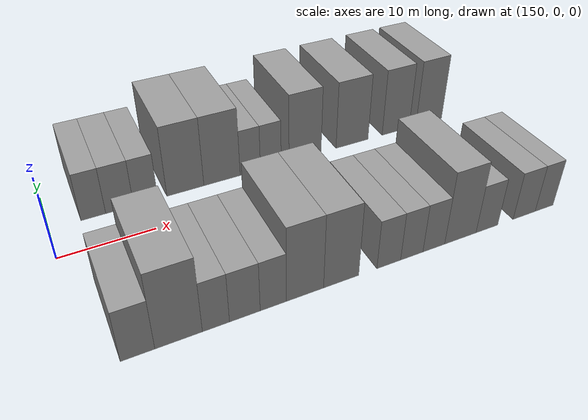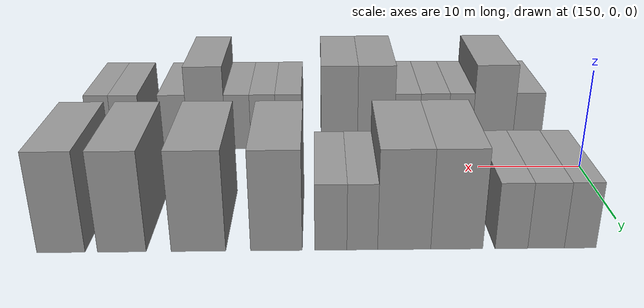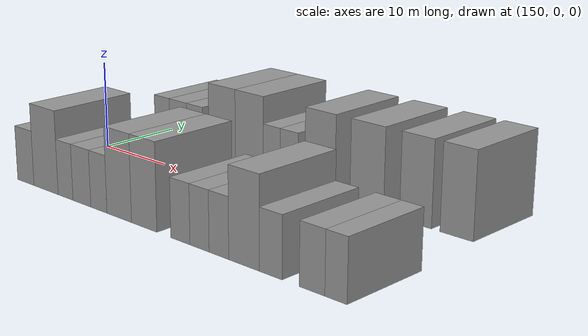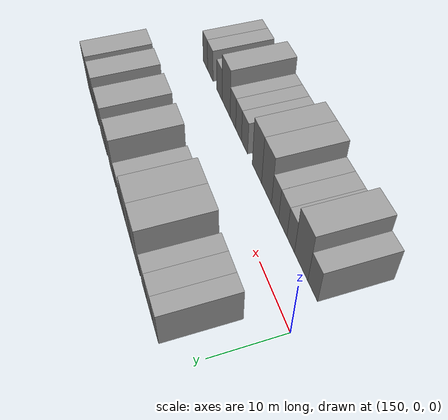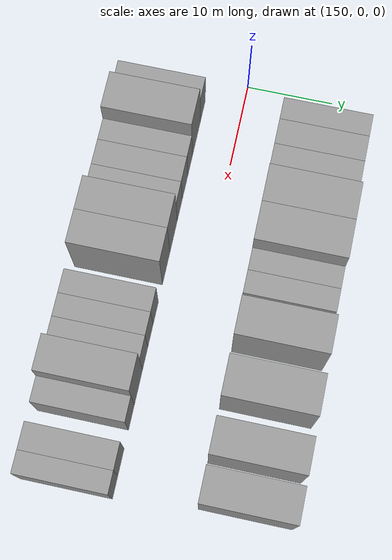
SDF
<sdf version="1.6">
 <world name="default">
  <model name="building_37">
   <static>1</static>
   <pose>154.5629 9.5000 0 0.000000 0.000000 1.570796</pose>
   <link name="link">
    <pose>0 0 3.00 0 0 0</pose>
    <collision name="collision"><geometry><box><size>10.0000 2.5899 6.0000</size></box></geometry></collision>
    <visual name="visual">
     <cast_shadows>0</cast_shadows>
     <geometry><box><size>10.0000 2.5899 6.0000</size></box></geometry>
     <material>
      <script>
       <uri>model://grey_wall/materials/scripts</uri>
       <uri>model://grey_wall/materials/textures</uri>
       <name>vrc/grey_wall</name>
      </script>
     </material>
    </visual>
   </link>
  </model>
  <model name="building_38">
   <static>1</static>
   <pose>157.3477 9.5000 0 0.000000 0.000000 1.570796</pose>
   <link name="link">
    <pose>0 0 3.00 0 0 0</pose>
    <collision name="collision"><geometry><box><size>10.0000 2.9798 6.0000</size></box></geometry></collision>
    <visual name="visual">
     <cast_shadows>0</cast_shadows>
     <geometry><box><size>10.0000 2.9798 6.0000</size></box></geometry>
     <material>
      <script>
       <uri>model://grey_wall/materials/scripts</uri>
       <uri>model://grey_wall/materials/textures</uri>
       <name>vrc/grey_wall</name>
      </script>
     </material>
    </visual>
   </link>
  </model>
  <model name="building_39">
   <static>1</static>
   <pose>160.1673 9.5000 0 0.000000 0.000000 1.570796</pose>
   <link name="link">
    <pose>0 0 3.00 0 0 0</pose>
    <collision name="collision"><geometry><box><size>10.0000 2.6594 6.0000</size></box></geometry></collision>
    <visual name="visual">
     <cast_shadows>0</cast_shadows>
     <geometry><box><size>10.0000 2.6594 6.0000</size></box></geometry>
     <material>
      <script>
       <uri>model://grey_wall/materials/scripts</uri>
       <uri>model://grey_wall/materials/textures</uri>
       <name>vrc/grey_wall</name>
      </script>
     </material>
    </visual>
   </link>
  </model>
  <model name="building_40">
   <static>1</static>
   <pose>164.6145 9.5000 0 0.000000 0.000000 1.570796</pose>
   <link name="link">
    <pose>0 0 4.50 0 0 0</pose>
    <collision name="collision"><geometry><box><size>10.0000 4.2350 9.0000</size></box></geometry></collision>
    <visual name="visual">
     <cast_shadows>0</cast_shadows>
     <geometry><box><size>10.0000 4.2350 9.0000</size></box></geometry>
     <material>
      <script>
       <uri>model://grey_wall/materials/scripts</uri>
       <uri>model://grey_wall/materials/textures</uri>
       <name>vrc/grey_wall</name>
      </script>
     </material>
    </visual>
   </link>
  </model>
  <model name="building_41">
   <static>1</static>
   <pose>168.8875 9.5000 0 0.000000 0.000000 1.570796</pose>
   <link name="link">
    <pose>0 0 4.50 0 0 0</pose>
    <collision name="collision"><geometry><box><size>10.0000 4.3110 9.0000</size></box></geometry></collision>
    <visual name="visual">
     <cast_shadows>0</cast_shadows>
     <geometry><box><size>10.0000 4.3110 9.0000</size></box></geometry>
     <material>
      <script>
       <uri>model://grey_wall/materials/scripts</uri>
       <uri>model://grey_wall/materials/textures</uri>
       <name>vrc/grey_wall</name>
      </script>
     </material>
    </visual>
   </link>
  </model>
  <model name="building_42">
   <static>1</static>
   <pose>172.2855 9.5000 0 0.000000 0.000000 1.570796</pose>
   <link name="link">
    <pose>0 0 3.00 0 0 0</pose>
    <collision name="collision"><geometry><box><size>10.0000 2.4851 6.0000</size></box></geometry></collision>
    <visual name="visual">
     <cast_shadows>0</cast_shadows>
     <geometry><box><size>10.0000 2.4851 6.0000</size></box></geometry>
     <material>
      <script>
       <uri>model://grey_wall/materials/scripts</uri>
       <uri>model://grey_wall/materials/textures</uri>
       <name>vrc/grey_wall</name>
      </script>
     </material>
    </visual>
   </link>
  </model>
  <model name="building_43">
   <static>1</static>
   <pose>174.8274 9.5000 0 0.000000 0.000000 1.570796</pose>
   <link name="link">
    <pose>0 0 3.00 0 0 0</pose>
    <collision name="collision"><geometry><box><size>10.0000 2.5986 6.0000</size></box></geometry></collision>
    <visual name="visual">
     <cast_shadows>0</cast_shadows>
     <geometry><box><size>10.0000 2.5986 6.0000</size></box></geometry>
     <material>
      <script>
       <uri>model://grey_wall/materials/scripts</uri>
       <uri>model://grey_wall/materials/textures</uri>
       <name>vrc/grey_wall</name>
      </script>
     </material>
    </visual>
   </link>
  </model>
  <model name="building_44">
   <static>1</static>
   <pose>179.2178 9.5000 0 0.000000 0.000000 1.570796</pose>
   <link name="link">
    <pose>0 0 4.50 0 0 0</pose>
    <collision name="collision"><geometry><box><size>10.0000 4.1823 9.0000</size></box></geometry></collision>
    <visual name="visual">
     <cast_shadows>0</cast_shadows>
     <geometry><box><size>10.0000 4.1823 9.0000</size></box></geometry>
     <material>
      <script>
       <uri>model://grey_wall/materials/scripts</uri>
       <uri>model://grey_wall/materials/textures</uri>
       <name>vrc/grey_wall</name>
      </script>
     </material>
    </visual>
   </link>
  </model>
  <model name="building_45">
   <static>1</static>
   <pose>185.5086 9.5000 0 0.000000 0.000000 1.570796</pose>
   <link name="link">
    <pose>0 0 4.50 0 0 0</pose>
    <collision name="collision"><geometry><box><size>10.0000 4.3992 9.0000</size></box></geometry></collision>
    <visual name="visual">
     <cast_shadows>0</cast_shadows>
     <geometry><box><size>10.0000 4.3992 9.0000</size></box></geometry>
     <material>
      <script>
       <uri>model://grey_wall/materials/scripts</uri>
       <uri>model://grey_wall/materials/textures</uri>
       <name>vrc/grey_wall</name>
      </script>
     </material>
    </visual>
   </link>
  </model>
  <model name="building_46">
   <static>1</static>
   <pose>191.6624 9.5000 0 0.000000 0.000000 1.570796</pose>
   <link name="link">
    <pose>0 0 4.50 0 0 0</pose>
    <collision name="collision"><geometry><box><size>10.0000 3.9084 9.0000</size></box></geometry></collision>
    <visual name="visual">
     <cast_shadows>0</cast_shadows>
     <geometry><box><size>10.0000 3.9084 9.0000</size></box></geometry>
     <material>
      <script>
       <uri>model://grey_wall/materials/scripts</uri>
       <uri>model://grey_wall/materials/textures</uri>
       <name>vrc/grey_wall</name>
      </script>
     </material>
    </visual>
   </link>
  </model>
  <model name="building_47">
   <static>1</static>
   <pose>196.5463 9.5000 0 0.000000 0.000000 1.570796</pose>
   <link name="link">
    <pose>0 0 4.50 0 0 0</pose>
    <collision name="collision"><geometry><box><size>10.0000 3.8595 9.0000</size></box></geometry></collision>
    <visual name="visual">
     <cast_shadows>0</cast_shadows>
     <geometry><box><size>10.0000 3.8595 9.0000</size></box></geometry>
     <material>
      <script>
       <uri>model://grey_wall/materials/scripts</uri>
       <uri>model://grey_wall/materials/textures</uri>
       <name>vrc/grey_wall</name>
      </script>
     </material>
    </visual>
   </link>
  </model>
  <model name="building_87">
   <static>1</static>
   <pose>154.2077 -9.5000 0 0.000000 0.000000 1.570796</pose>
   <link name="link">
    <pose>0 0 3.00 0 0 0</pose>
    <collision name="collision"><geometry><box><size>10.0000 2.9531 6.0000</size></box></geometry></collision>
    <visual name="visual">
     <cast_shadows>0</cast_shadows>
     <geometry><box><size>10.0000 2.9531 6.0000</size></box></geometry>
     <material>
      <script>
       <uri>model://grey_wall/materials/scripts</uri>
       <uri>model://grey_wall/materials/textures</uri>
       <name>vrc/grey_wall</name>
      </script>
     </material>
    </visual>
   </link>
  </model>
  <model name="building_88">
   <static>1</static>
   <pose>157.8018 -9.5000 0 0.000000 0.000000 1.570796</pose>
   <link name="link">
    <pose>0 0 4.50 0 0 0</pose>
    <collision name="collision"><geometry><box><size>10.0000 4.2352 9.0000</size></box></geometry></collision>
    <visual name="visual">
     <cast_shadows>0</cast_shadows>
     <geometry><box><size>10.0000 4.2352 9.0000</size></box></geometry>
     <material>
      <script>
       <uri>model://grey_wall/materials/scripts</uri>
       <uri>model://grey_wall/materials/textures</uri>
       <name>vrc/grey_wall</name>
      </script>
     </material>
    </visual>
   </link>
  </model>
  <model name="building_89">
   <static>1</static>
   <pose>161.1747 -9.5000 0 0.000000 0.000000 1.570796</pose>
   <link name="link">
    <pose>0 0 3.00 0 0 0</pose>
    <collision name="collision"><geometry><box><size>10.0000 2.5106 6.0000</size></box></geometry></collision>
    <visual name="visual">
     <cast_shadows>0</cast_shadows>
     <geometry><box><size>10.0000 2.5106 6.0000</size></box></geometry>
     <material>
      <script>
       <uri>model://grey_wall/materials/scripts</uri>
       <uri>model://grey_wall/materials/textures</uri>
       <name>vrc/grey_wall</name>
      </script>
     </material>
    </visual>
   </link>
  </model>
  <model name="building_90">
   <static>1</static>
   <pose>163.8976 -9.5000 0 0.000000 0.000000 1.570796</pose>
   <link name="link">
    <pose>0 0 3.00 0 0 0</pose>
    <collision name="collision"><geometry><box><size>10.0000 2.9354 6.0000</size></box></geometry></collision>
    <visual name="visual">
     <cast_shadows>0</cast_shadows>
     <geometry><box><size>10.0000 2.9354 6.0000</size></box></geometry>
     <material>
      <script>
       <uri>model://grey_wall/materials/scripts</uri>
       <uri>model://grey_wall/materials/textures</uri>
       <name>vrc/grey_wall</name>
      </script>
     </material>
    </visual>
   </link>
  </model>
  <model name="building_91">
   <static>1</static>
   <pose>166.6589 -9.5000 0 0.000000 0.000000 1.570796</pose>
   <link name="link">
    <pose>0 0 3.00 0 0 0</pose>
    <collision name="collision"><geometry><box><size>10.0000 2.5870 6.0000</size></box></geometry></collision>
    <visual name="visual">
     <cast_shadows>0</cast_shadows>
     <geometry><box><size>10.0000 2.5870 6.0000</size></box></geometry>
     <material>
      <script>
       <uri>model://grey_wall/materials/scripts</uri>
       <uri>model://grey_wall/materials/textures</uri>
       <name>vrc/grey_wall</name>
      </script>
     </material>
    </visual>
   </link>
  </model>
  <model name="building_92">
   <static>1</static>
   <pose>169.8517 -9.5000 0 0.000000 0.000000 1.570796</pose>
   <link name="link">
    <pose>0 0 4.50 0 0 0</pose>
    <collision name="collision"><geometry><box><size>10.0000 3.7985 9.0000</size></box></geometry></collision>
    <visual name="visual">
     <cast_shadows>0</cast_shadows>
     <geometry><box><size>10.0000 3.7985 9.0000</size></box></geometry>
     <material>
      <script>
       <uri>model://grey_wall/materials/scripts</uri>
       <uri>model://grey_wall/materials/textures</uri>
       <name>vrc/grey_wall</name>
      </script>
     </material>
    </visual>
   </link>
  </model>
  <model name="building_93">
   <static>1</static>
   <pose>173.6229 -9.5000 0 0.000000 0.000000 1.570796</pose>
   <link name="link">
    <pose>0 0 4.50 0 0 0</pose>
    <collision name="collision"><geometry><box><size>10.0000 3.7440 9.0000</size></box></geometry></collision>
    <visual name="visual">
     <cast_shadows>0</cast_shadows>
     <geometry><box><size>10.0000 3.7440 9.0000</size></box></geometry>
     <material>
      <script>
       <uri>model://grey_wall/materials/scripts</uri>
       <uri>model://grey_wall/materials/textures</uri>
       <name>vrc/grey_wall</name>
      </script>
     </material>
    </visual>
   </link>
  </model>
  <model name="building_94">
   <static>1</static>
   <pose>178.8307 -9.5000 0 0.000000 0.000000 1.570796</pose>
   <link name="link">
    <pose>0 0 3.00 0 0 0</pose>
    <collision name="collision"><geometry><box><size>10.0000 2.6715 6.0000</size></box></geometry></collision>
    <visual name="visual">
     <cast_shadows>0</cast_shadows>
     <geometry><box><size>10.0000 2.6715 6.0000</size></box></geometry>
     <material>
      <script>
       <uri>model://grey_wall/materials/scripts</uri>
       <uri>model://grey_wall/materials/textures</uri>
       <name>vrc/grey_wall</name>
      </script>
     </material>
    </visual>
   </link>
  </model>
  <model name="building_95">
   <static>1</static>
   <pose>181.4575 -9.5000 0 0.000000 0.000000 1.570796</pose>
   <link name="link">
    <pose>0 0 3.00 0 0 0</pose>
    <collision name="collision"><geometry><box><size>10.0000 2.5821 6.0000</size></box></geometry></collision>
    <visual name="visual">
     <cast_shadows>0</cast_shadows>
     <geometry><box><size>10.0000 2.5821 6.0000</size></box></geometry>
     <material>
      <script>
       <uri>model://grey_wall/materials/scripts</uri>
       <uri>model://grey_wall/materials/textures</uri>
       <name>vrc/grey_wall</name>
      </script>
     </material>
    </visual>
   </link>
  </model>
  <model name="building_96">
   <static>1</static>
   <pose>184.0399 -9.5000 0 0.000000 0.000000 1.570796</pose>
   <link name="link">
    <pose>0 0 3.00 0 0 0</pose>
    <collision name="collision"><geometry><box><size>10.0000 2.5826 6.0000</size></box></geometry></collision>
    <visual name="visual">
     <cast_shadows>0</cast_shadows>
     <geometry><box><size>10.0000 2.5826 6.0000</size></box></geometry>
     <material>
      <script>
       <uri>model://grey_wall/materials/scripts</uri>
       <uri>model://grey_wall/materials/textures</uri>
       <name>vrc/grey_wall</name>
      </script>
     </material>
    </visual>
   </link>
  </model>
  <model name="building_97">
   <static>1</static>
   <pose>187.2645 -9.5000 0 0.000000 0.000000 1.570796</pose>
   <link name="link">
    <pose>0 0 4.50 0 0 0</pose>
    <collision name="collision"><geometry><box><size>10.0000 3.8667 9.0000</size></box></geometry></collision>
    <visual name="visual">
     <cast_shadows>0</cast_shadows>
     <geometry><box><size>10.0000 3.8667 9.0000</size></box></geometry>
     <material>
      <script>
       <uri>model://grey_wall/materials/scripts</uri>
       <uri>model://grey_wall/materials/textures</uri>
       <name>vrc/grey_wall</name>
      </script>
     </material>
    </visual>
   </link>
  </model>
  <model name="building_98">
   <static>1</static>
   <pose>190.5794 -9.5000 0 0.000000 0.000000 1.570796</pose>
   <link name="link">
    <pose>0 0 3.00 0 0 0</pose>
    <collision name="collision"><geometry><box><size>10.0000 2.7631 6.0000</size></box></geometry></collision>
    <visual name="visual">
     <cast_shadows>0</cast_shadows>
     <geometry><box><size>10.0000 2.7631 6.0000</size></box></geometry>
     <material>
      <script>
       <uri>model://grey_wall/materials/scripts</uri>
       <uri>model://grey_wall/materials/textures</uri>
       <name>vrc/grey_wall</name>
      </script>
     </material>
    </visual>
   </link>
  </model>
  <model name="building_99">
   <static>1</static>
   <pose>195.4271 -9.5000 0 0.000000 0.000000 1.570796</pose>
   <link name="link">
    <pose>0 0 3.00 0 0 0</pose>
    <collision name="collision"><geometry><box><size>10.0000 2.9324 6.0000</size></box></geometry></collision>
    <visual name="visual">
     <cast_shadows>0</cast_shadows>
     <geometry><box><size>10.0000 2.9324 6.0000</size></box></geometry>
     <material>
      <script>
       <uri>model://grey_wall/materials/scripts</uri>
       <uri>model://grey_wall/materials/textures</uri>
       <name>vrc/grey_wall</name>
      </script>
     </material>
    </visual>
   </link>
  </model>
  <model name="building_100">
   <static>1</static>
   <pose>198.1188 -9.5000 0 0.000000 0.000000 1.570796</pose>
   <link name="link">
    <pose>0 0 3.00 0 0 0</pose>
    <collision name="collision"><geometry><box><size>10.0000 2.4510 6.0000</size></box></geometry></collision>
    <visual name="visual">
     <cast_shadows>0</cast_shadows>
     <geometry><box><size>10.0000 2.4510 6.0000</size></box></geometry>
     <material>
      <script>
       <uri>model://grey_wall/materials/scripts</uri>
       <uri>model://grey_wall/materials/textures</uri>
       <name>vrc/grey_wall</name>
      </script>
     </material>
    </visual>
   </link>
  </model>
 </world>
</sdf>
